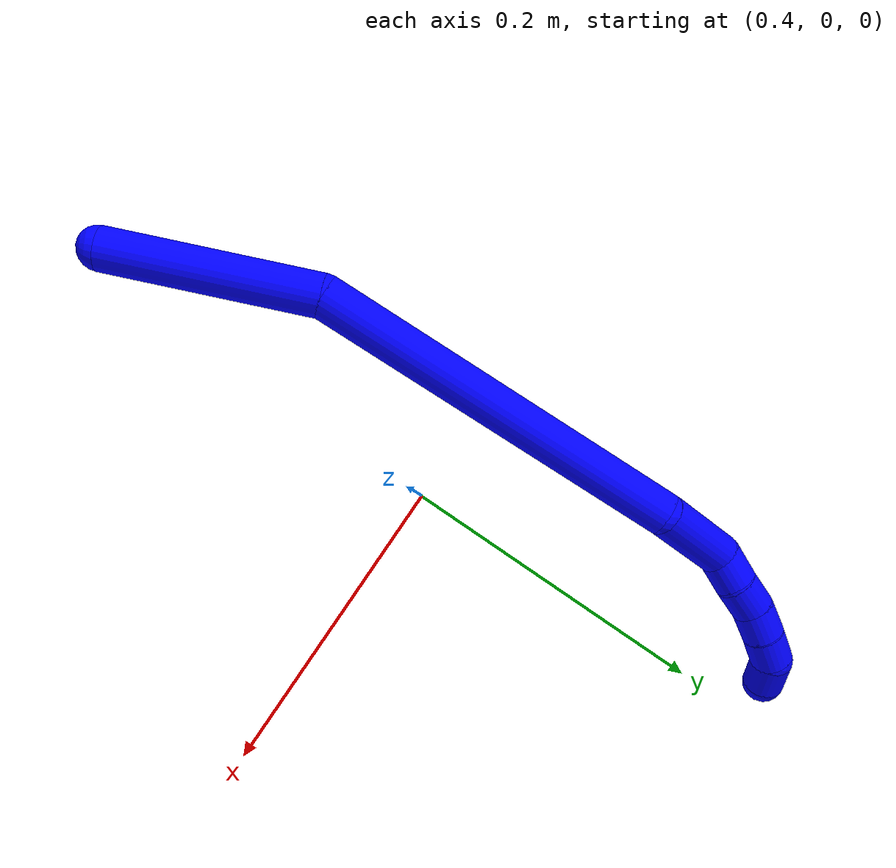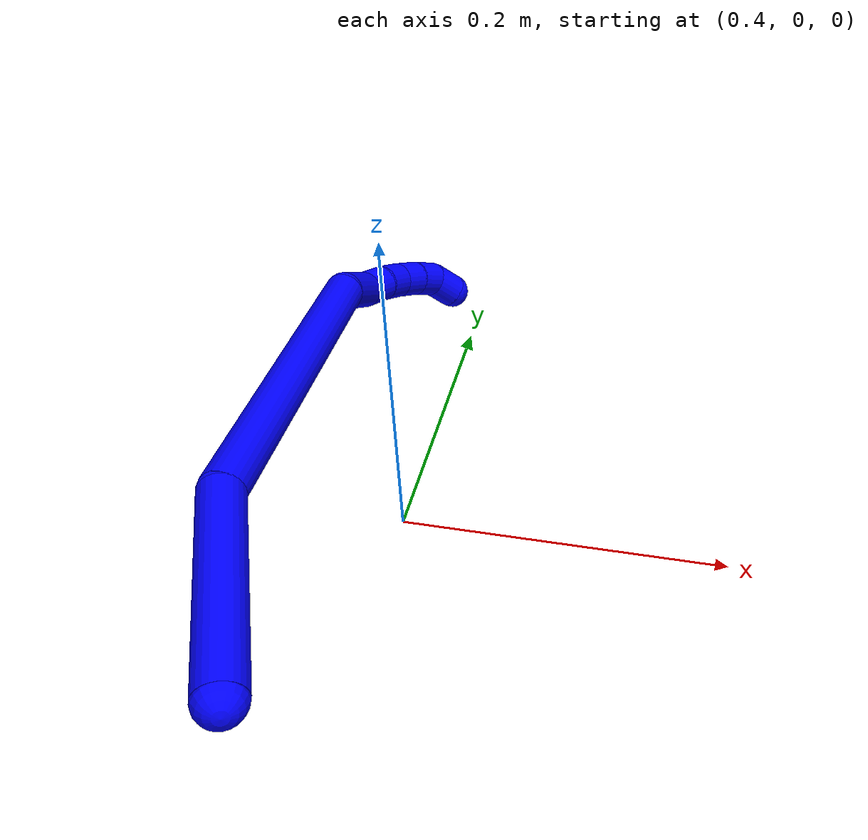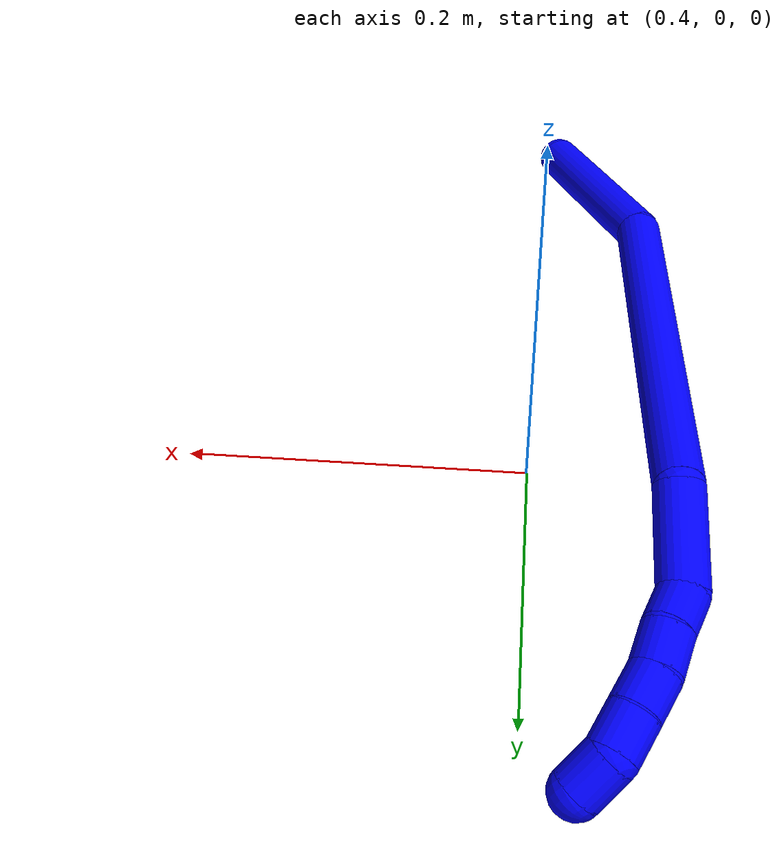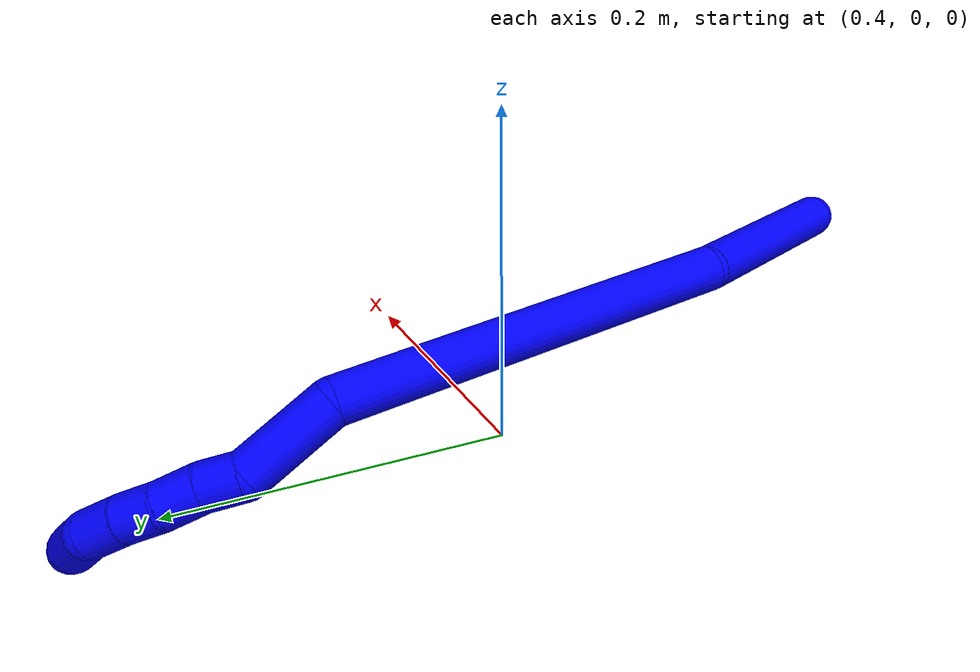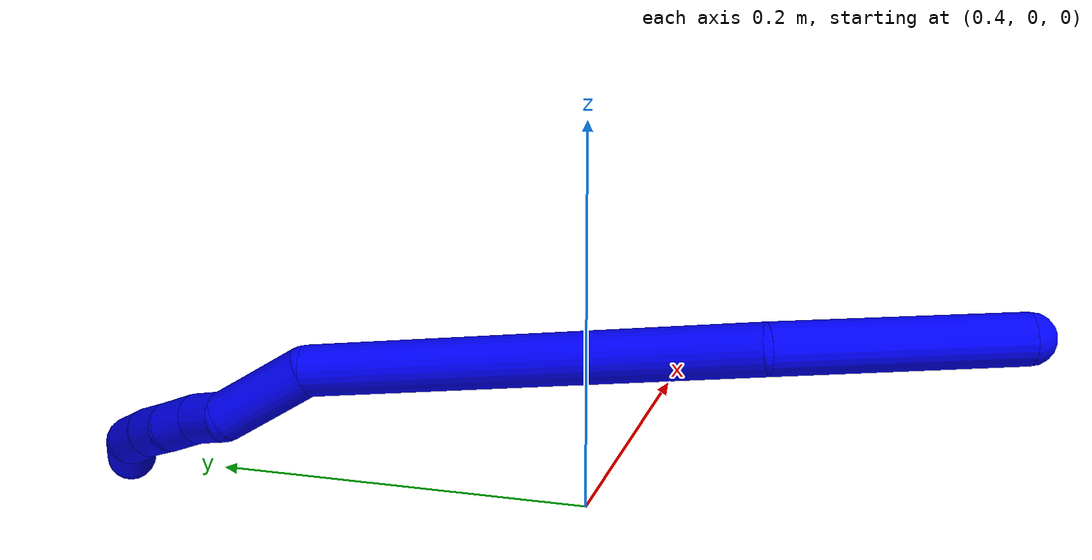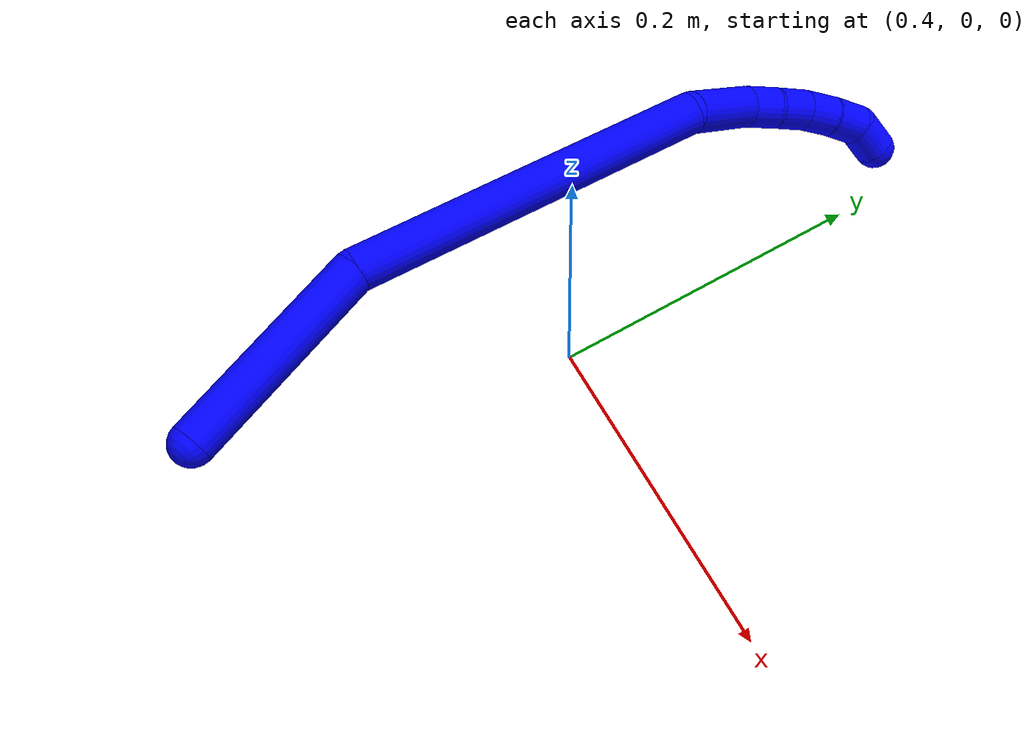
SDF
<sdf version="1.7">
 <world name="default">
  <plugin name="TubeGeneratorPlugin" filename="libtube_generator_plugin.so"/>
  <model name="photoneo_s_sensor">
   <static>1</static>
   <pose>0 0 2 1.57079 1.57079 3.14159</pose>
   <link name="link">
    <inertial><mass>0.1</mass></inertial>
    <sensor name="sensor" type="depth">
     <update_rate>30</update_rate>
     <camera>
      <horizontal_fov>1.22</horizontal_fov>
      <image><width>1920</width><height>1200</height><format>B8G8R8</format></image>
      <clip><near>0.1</near><far>4</far></clip>
      <depth_camera><output>points</output></depth_camera>
     </camera>
     <plugin name="camera_plugin" filename="libgazebo_ros_depth_camera.so">
      <baseline>0.2</baseline>
      <alwaysOn>1</alwaysOn>
      <updateRate>0.0</updateRate>
      <cameraName>camera_ir</cameraName>
      <imageTopicName>/camera/color/image_raw</imageTopicName>
      <cameraInfoTopicName>/camera/color/camera_info</cameraInfoTopicName>
      <depthImageTopicName>/camera/depth/image_raw</depthImageTopicName>
      <depthImageCameraInfoTopicName>/camera/depth/camera_info</depthImageCameraInfoTopicName>
      <pointCloudTopicName>/camera/depth/points</pointCloudTopicName>
      <frameName>fr_optical</frameName>
      <pointCloudCutoff>0.1</pointCloudCutoff>
      <pointCloudCutoffMax>2.0</pointCloudCutoffMax>
      <distortionK1>0</distortionK1>
      <distortionK2>0</distortionK2>
      <distortionK3>0</distortionK3>
      <distortionT1>0</distortionT1>
      <distortionT2>0</distortionT2>
      <CxPrime>0</CxPrime>
      <Cx>0</Cx>
      <Cy>0</Cy>
      <focalLength>0</focalLength>
      <hackBaseline>0</hackBaseline>
     </plugin>
    </sensor>
   </link>
  </model>
  <gravity>0 0 -9.8</gravity>
  <magnetic_field>6e-06 2.3e-05 -4.2e-05</magnetic_field>
  <atmosphere type="adiabatic"/>
  <physics name="default_physics" default="0" type="ode">
   <max_step_size>0.003</max_step_size>
   <real_time_factor>1</real_time_factor>
   <real_time_update_rate>1000</real_time_update_rate>
   <max_contacts>10000</max_contacts>
   <ode>
    <solver>
     <type>quick</type>
     <iters>100</iters>
     <sor>1.3</sor>
     <use_dynamic_moi_rescaling>0</use_dynamic_moi_rescaling>
    </solver>
    <constraints>
     <contact_max_correcting_vel>0</contact_max_correcting_vel>
     <contact_surface_layer>0.001</contact_surface_layer>
     <cfm>0</cfm>
     <erp>0.2</erp>
    </constraints>
   </ode>
  </physics>
  <scene><ambient>0.4 0.4 0.4 1</ambient><background>0.7 0.7 0.7 1</background><shadows>0</shadows></scene>
  <audio><device>default</device></audio>
  <spherical_coordinates>
   <surface_model>EARTH_WGS84</surface_model>
   <latitude_deg>0</latitude_deg>
   <longitude_deg>0</longitude_deg>
   <elevation>0</elevation>
   <heading_deg>0</heading_deg>
  </spherical_coordinates>
  <model name="bin">
   <static>1</static>
   <link name="bottom">
    <collision name="collision-bottom">
     <pose>0 0 -0.01 0 -0 0</pose>
     <geometry><box><size>0.8 0.6 0.02</size></box></geometry>
     <surface>
      <friction><ode><mu>100</mu><mu2>100</mu2></ode></friction>
      <contact><collide_bitmask>65535</collide_bitmask></contact>
     </surface>
    </collision>
   </link>
   <link name="west_wall">
    <collision name="collision-west_wall">
     <pose>-0.41 0 0.1 0 -0 0</pose>
     <geometry><box><size>0.02 0.6 0.2</size></box></geometry>
     <surface>
      <friction><ode><mu>100</mu><mu2>100</mu2></ode></friction>
      <contact><collide_bitmask>65535</collide_bitmask></contact>
     </surface>
    </collision>
   </link>
   <link name="east_wall">
    <collision name="collision-east_wall">
     <pose>0.41 0 0.1 0 -0 0</pose>
     <geometry><box><size>0.02 0.6 0.2</size></box></geometry>
     <surface>
      <friction><ode><mu>100</mu><mu2>100</mu2></ode></friction>
      <contact><collide_bitmask>65535</collide_bitmask></contact>
     </surface>
    </collision>
   </link>
   <link name="south_wall">
    <collision name="collision-south_wall">
     <pose>0 -0.31 0.1 0 -0 0</pose>
     <geometry><box><size>0.8 0.02 0.2</size></box></geometry>
     <surface>
      <friction><ode><mu>100</mu><mu2>100</mu2></ode></friction>
      <contact><collide_bitmask>65535</collide_bitmask></contact>
     </surface>
    </collision>
   </link>
   <link name="north_wall">
    <collision name="collision-north_wall">
     <pose>0 0.31 0.1 0 -0 0</pose>
     <geometry><box><size>0.8 0.02 0.2</size></box></geometry>
     <surface>
      <friction><ode><mu>100</mu><mu2>100</mu2></ode></friction>
      <contact><collide_bitmask>65535</collide_bitmask></contact>
     </surface>
    </collision>
   </link>
  </model>
  <model name="1">
   <static>0</static>
   <link name="1">
    <collision name="collision-cylinder-e_1_1_4">
     <pose>0.01697 0.00297 0.058741 -0.050513 0.280896 -0.007143</pose>
     <geometry><cylinder><radius>0.0125</radius><length>0.12243</length></cylinder></geometry>
     <surface>
      <friction><ode><mu>1.16</mu><mu2>1.16</mu2><slip1>0</slip1><slip2>0</slip2></ode></friction>
      <contact><ode><kp>1e+06</kp><kd>1</kd><max_vel>0</max_vel><min_depth>0.001</min_depth></ode></contact>
     </surface>
    </collision>
    <visual name="visual-cylinder-e_1_1_4">
     <pose>0.01697 0.00297 0.058741 -0.050513 0.280896 -0.007143</pose>
     <geometry><cylinder><radius>0.0125</radius><length>0.12243</length></cylinder></geometry>
     <material><ambient>0 0 1 1</ambient></material>
    </visual>
    <collision name="collision-cylinder-e_2_4_5">
     <pose>0.052912 0.049499 0.217937 -0.409151 0.171571 -0.035681</pose>
     <geometry><cylinder><radius>0.0125</radius><length>0.222248</length></cylinder></geometry>
     <surface>
      <friction><ode><mu>1.16</mu><mu2>1.16</mu2><slip1>0</slip1><slip2>0</slip2></ode></friction>
      <contact><ode><kp>1e+06</kp><kd>1</kd><max_vel>0</max_vel><min_depth>0.001</min_depth></ode></contact>
     </surface>
    </collision>
    <visual name="visual-cylinder-e_2_4_5">
     <pose>0.052912 0.049499 0.217937 -0.409151 0.171571 -0.035681</pose>
     <geometry><cylinder><radius>0.0125</radius><length>0.222248</length></cylinder></geometry>
     <material><ambient>0 0 1 1</ambient></material>
    </visual>
    <collision name="collision-cylinder-e_3_5_6">
     <pose>0.065168 0.102866 0.34111 -0.407538 -0.265024 0.055073</pose>
     <geometry><cylinder><radius>0.0125</radius><length>0.051282</length></cylinder></geometry>
     <surface>
      <friction><ode><mu>1.16</mu><mu2>1.16</mu2><slip1>0</slip1><slip2>0</slip2></ode></friction>
      <contact><ode><kp>1e+06</kp><kd>1</kd><max_vel>0</max_vel><min_depth>0.001</min_depth></ode></contact>
     </surface>
    </collision>
    <visual name="visual-cylinder-e_3_5_6">
     <pose>0.065168 0.102866 0.34111 -0.407538 -0.265024 0.055073</pose>
     <geometry><cylinder><radius>0.0125</radius><length>0.051282</length></cylinder></geometry>
     <material><ambient>0 0 1 1</ambient></material>
    </visual>
    <collision name="collision-cylinder-e_4_6_7">
     <pose>0.05841 0.120169 0.370848 -0.818196 -0.004055 0.001758</pose>
     <geometry><cylinder><radius>0.0125</radius><length>0.020535</length></cylinder></geometry>
     <surface>
      <friction><ode><mu>1.16</mu><mu2>1.16</mu2><slip1>0</slip1><slip2>0</slip2></ode></friction>
      <contact><ode><kp>1e+06</kp><kd>1</kd><max_vel>0</max_vel><min_depth>0.001</min_depth></ode></contact>
     </surface>
    </collision>
    <visual name="visual-cylinder-e_4_6_7">
     <pose>0.05841 0.120169 0.370848 -0.818196 -0.004055 0.001758</pose>
     <geometry><cylinder><radius>0.0125</radius><length>0.020535</length></cylinder></geometry>
     <material><ambient>0 0 1 1</ambient></material>
    </visual>
    <collision name="collision-cylinder-e_5_7_8">
     <pose>0.056948 0.134596 0.385702 -0.724377 -0.134935 0.051194</pose>
     <geometry><cylinder><radius>0.0125</radius><length>0.021118</length></cylinder></geometry>
     <surface>
      <friction><ode><mu>1.16</mu><mu2>1.16</mu2><slip1>0</slip1><slip2>0</slip2></ode></friction>
      <contact><ode><kp>1e+06</kp><kd>1</kd><max_vel>0</max_vel><min_depth>0.001</min_depth></ode></contact>
     </surface>
    </collision>
    <visual name="visual-cylinder-e_5_7_8">
     <pose>0.056948 0.134596 0.385702 -0.724377 -0.134935 0.051194</pose>
     <geometry><cylinder><radius>0.0125</radius><length>0.021118</length></cylinder></geometry>
     <material><ambient>0 0 1 1</ambient></material>
    </visual>
    <collision name="collision-cylinder-e_6_8_9">
     <pose>0.054094 0.149384 0.399695 -0.90593 -0.142665 0.069527</pose>
     <geometry><cylinder><radius>0.0125</radius><length>0.020166</length></cylinder></geometry>
     <surface>
      <friction><ode><mu>1.16</mu><mu2>1.16</mu2><slip1>0</slip1><slip2>0</slip2></ode></friction>
      <contact><ode><kp>1e+06</kp><kd>1</kd><max_vel>0</max_vel><min_depth>0.001</min_depth></ode></contact>
     </surface>
    </collision>
    <visual name="visual-cylinder-e_6_8_9">
     <pose>0.054094 0.149384 0.399695 -0.90593 -0.142665 0.069527</pose>
     <geometry><cylinder><radius>0.0125</radius><length>0.020166</length></cylinder></geometry>
     <material><ambient>0 0 1 1</ambient></material>
    </visual>
    <collision name="collision-cylinder-e_7_9_10">
     <pose>0.050185 0.165329 0.412041 -0.917762 -0.238357 0.118185</pose>
     <geometry><cylinder><radius>0.0125</radius><length>0.020964</length></cylinder></geometry>
     <surface>
      <friction><ode><mu>1.16</mu><mu2>1.16</mu2><slip1>0</slip1><slip2>0</slip2></ode></friction>
      <contact><ode><kp>1e+06</kp><kd>1</kd><max_vel>0</max_vel><min_depth>0.001</min_depth></ode></contact>
     </surface>
    </collision>
    <visual name="visual-cylinder-e_7_9_10">
     <pose>0.050185 0.165329 0.412041 -0.917762 -0.238357 0.118185</pose>
     <geometry><cylinder><radius>0.0125</radius><length>0.020964</length></cylinder></geometry>
     <material><ambient>0 0 1 1</ambient></material>
    </visual>
    <collision name="collision-cylinder-e_8_10_2">
     <pose>0.041717 0.181899 0.420494 -1.3099 -0.599098 0.465799</pose>
     <geometry><cylinder><radius>0.0125</radius><length>0.021258</length></cylinder></geometry>
     <surface>
      <friction><ode><mu>1.16</mu><mu2>1.16</mu2><slip1>0</slip1><slip2>0</slip2></ode></friction>
      <contact><ode><kp>1e+06</kp><kd>1</kd><max_vel>0</max_vel><min_depth>0.001</min_depth></ode></contact>
     </surface>
    </collision>
    <visual name="visual-cylinder-e_8_10_2">
     <pose>0.041717 0.181899 0.420494 -1.3099 -0.599098 0.465799</pose>
     <geometry><cylinder><radius>0.0125</radius><length>0.021258</length></cylinder></geometry>
     <material><ambient>0 0 1 1</ambient></material>
    </visual>
    <collision name="collision-sphere-2">
     <pose>0.035723 0.19038 0.422758 0 -0 0</pose>
     <geometry><sphere><radius>0.0125</radius></sphere></geometry>
     <surface>
      <friction><ode><mu>1.16</mu><mu2>1.16</mu2><slip1>0</slip1><slip2>0</slip2></ode></friction>
      <contact><ode><kp>1e+06</kp><kd>1</kd><max_vel>0</max_vel><min_depth>0.001</min_depth></ode></contact>
     </surface>
    </collision>
    <visual name="visual-sphere-2">
     <pose>0.035723 0.19038 0.422758 0 -0 0</pose>
     <geometry><sphere><radius>0.0125</radius></sphere></geometry>
     <material><ambient>0 0 1 1</ambient></material>
    </visual>
    <collision name="collision-sphere-10">
     <pose>0.047711 0.173419 0.41823 0 -0 0</pose>
     <geometry><sphere><radius>0.0125</radius></sphere></geometry>
     <surface>
      <friction><ode><mu>1.16</mu><mu2>1.16</mu2><slip1>0</slip1><slip2>0</slip2></ode></friction>
      <contact><ode><kp>1e+06</kp><kd>1</kd><max_vel>0</max_vel><min_depth>0.001</min_depth></ode></contact>
     </surface>
    </collision>
    <visual name="visual-sphere-10">
     <pose>0.047711 0.173419 0.41823 0 -0 0</pose>
     <geometry><sphere><radius>0.0125</radius></sphere></geometry>
     <material><ambient>0 0 1 1</ambient></material>
    </visual>
    <collision name="collision-sphere-9">
     <pose>0.05266 0.157239 0.405852 0 -0 0</pose>
     <geometry><sphere><radius>0.0125</radius></sphere></geometry>
     <surface>
      <friction><ode><mu>1.16</mu><mu2>1.16</mu2><slip1>0</slip1><slip2>0</slip2></ode></friction>
      <contact><ode><kp>1e+06</kp><kd>1</kd><max_vel>0</max_vel><min_depth>0.001</min_depth></ode></contact>
     </surface>
    </collision>
    <visual name="visual-sphere-9">
     <pose>0.05266 0.157239 0.405852 0 -0 0</pose>
     <geometry><sphere><radius>0.0125</radius></sphere></geometry>
     <material><ambient>0 0 1 1</ambient></material>
    </visual>
    <collision name="collision-sphere-4">
     <pose>0.03394 0.005939 0.117482 0 -0 0</pose>
     <geometry><sphere><radius>0.0125</radius></sphere></geometry>
     <surface>
      <friction><ode><mu>1.16</mu><mu2>1.16</mu2><slip1>0</slip1><slip2>0</slip2></ode></friction>
      <contact><ode><kp>1e+06</kp><kd>1</kd><max_vel>0</max_vel><min_depth>0.001</min_depth></ode></contact>
     </surface>
    </collision>
    <visual name="visual-sphere-4">
     <pose>0.03394 0.005939 0.117482 0 -0 0</pose>
     <geometry><sphere><radius>0.0125</radius></sphere></geometry>
     <material><ambient>0 0 1 1</ambient></material>
    </visual>
    <collision name="collision-sphere-1">
     <geometry><sphere><radius>0.0125</radius></sphere></geometry>
     <surface>
      <friction><ode><mu>1.16</mu><mu2>1.16</mu2><slip1>0</slip1><slip2>0</slip2></ode></friction>
      <contact><ode><kp>1e+06</kp><kd>1</kd><max_vel>0</max_vel><min_depth>0.001</min_depth></ode></contact>
     </surface>
    </collision>
    <visual name="visual-sphere-1">
     <geometry><sphere><radius>0.0125</radius></sphere></geometry>
     <material><ambient>0 0 1 1</ambient></material>
    </visual>
    <collision name="collision-sphere-8">
     <pose>0.055527 0.14153 0.393537 0 -0 0</pose>
     <geometry><sphere><radius>0.0125</radius></sphere></geometry>
     <surface>
      <friction><ode><mu>1.16</mu><mu2>1.16</mu2><slip1>0</slip1><slip2>0</slip2></ode></friction>
      <contact><ode><kp>1e+06</kp><kd>1</kd><max_vel>0</max_vel><min_depth>0.001</min_depth></ode></contact>
     </surface>
    </collision>
    <visual name="visual-sphere-8">
     <pose>0.055527 0.14153 0.393537 0 -0 0</pose>
     <geometry><sphere><radius>0.0125</radius></sphere></geometry>
     <material><ambient>0 0 1 1</ambient></material>
    </visual>
    <collision name="collision-sphere-5">
     <pose>0.071884 0.093058 0.318391 0 -0 0</pose>
     <geometry><sphere><radius>0.0125</radius></sphere></geometry>
     <surface>
      <friction><ode><mu>1.16</mu><mu2>1.16</mu2><slip1>0</slip1><slip2>0</slip2></ode></friction>
      <contact><ode><kp>1e+06</kp><kd>1</kd><max_vel>0</max_vel><min_depth>0.001</min_depth></ode></contact>
     </surface>
    </collision>
    <visual name="visual-sphere-5">
     <pose>0.071884 0.093058 0.318391 0 -0 0</pose>
     <geometry><sphere><radius>0.0125</radius></sphere></geometry>
     <material><ambient>0 0 1 1</ambient></material>
    </visual>
    <collision name="collision-sphere-6">
     <pose>0.058452 0.112674 0.363829 0 -0 0</pose>
     <geometry><sphere><radius>0.0125</radius></sphere></geometry>
     <surface>
      <friction><ode><mu>1.16</mu><mu2>1.16</mu2><slip1>0</slip1><slip2>0</slip2></ode></friction>
      <contact><ode><kp>1e+06</kp><kd>1</kd><max_vel>0</max_vel><min_depth>0.001</min_depth></ode></contact>
     </surface>
    </collision>
    <visual name="visual-sphere-6">
     <pose>0.058452 0.112674 0.363829 0 -0 0</pose>
     <geometry><sphere><radius>0.0125</radius></sphere></geometry>
     <material><ambient>0 0 1 1</ambient></material>
    </visual>
    <collision name="collision-sphere-7">
     <pose>0.058368 0.127663 0.377866 0 -0 0</pose>
     <geometry><sphere><radius>0.0125</radius></sphere></geometry>
     <surface>
      <friction><ode><mu>1.16</mu><mu2>1.16</mu2><slip1>0</slip1><slip2>0</slip2></ode></friction>
      <contact><ode><kp>1e+06</kp><kd>1</kd><max_vel>0</max_vel><min_depth>0.001</min_depth></ode></contact>
     </surface>
    </collision>
    <visual name="visual-sphere-7">
     <pose>0.058368 0.127663 0.377866 0 -0 0</pose>
     <geometry><sphere><radius>0.0125</radius></sphere></geometry>
     <material><ambient>0 0 1 1</ambient></material>
    </visual>
    <inertial>
     <pose>0.045222 0.06459 0.229035 0 -0 0</pose>
     <mass>0.5</mass>
     <inertia>
      <ixx>0.001052</ixx>
      <ixy>0</ixy>
      <ixz>0</ixz>
      <iyy>0.001007</iyy>
      <iyz>0</iyz>
      <izz>-0.000544</izz>
     </inertia>
    </inertial>
   </link>
   <pose>0.387843 -0.212193 0.111863 -2.80289 -1.27529 1.68385</pose>
  </model>
 </world>
</sdf>
